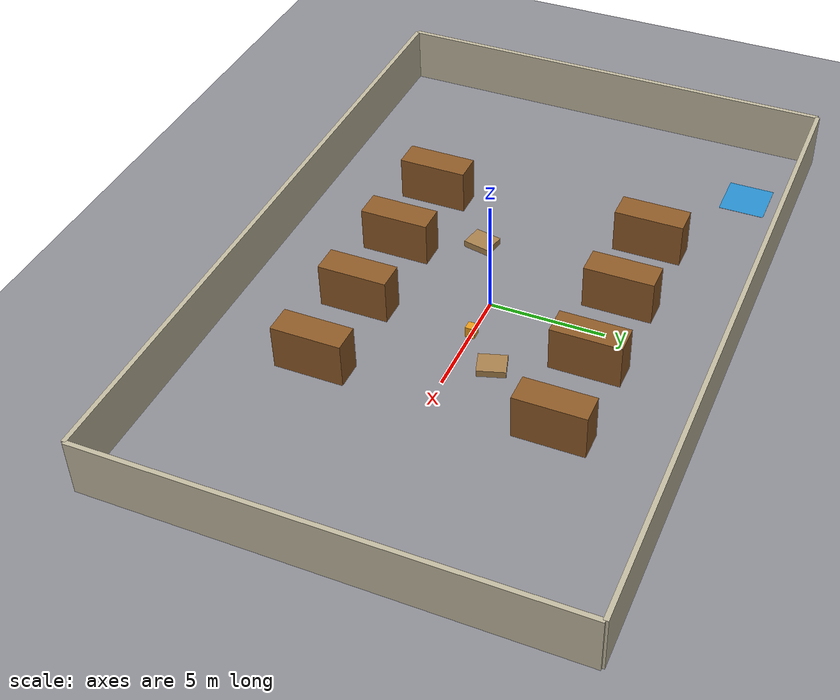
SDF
<?xml version="1.0" ?>
<sdf version="1.6">
  <world name="warehouse">

    <include>
      <uri>model://sun</uri>
    </include>

    <model name="ground_plane">
      <static>true</static>
      <link name="link">
        <collision name="collision">
          <geometry><plane><normal>0 0 1</normal><size>30 20</size></plane></geometry>
          <surface><friction><ode><mu>0.9</mu><mu2>0.9</mu2></ode></friction></surface>
        </collision>
        <visual name="visual">
          <geometry><plane><normal>0 0 1</normal><size>30 20</size></plane></geometry>
          <material>
            <ambient>0.55 0.55 0.58 1</ambient>
            <diffuse>0.55 0.55 0.58 1</diffuse>
          </material>
        </visual>
      </link>
    </model>

    <physics type="ode">
      <real_time_update_rate>1000.0</real_time_update_rate>
      <max_step_size>0.001</max_step_size>
    </physics>

    <!-- ================= Perimeter walls ================= -->
    <model name="wall_north">
      <static>true</static>
      <pose>0 10 1.25 0 0 0</pose>
      <link name="link">
        <collision name="collision"><geometry><box><size>30 0.2 2.5</size></box></geometry></collision>
        <visual name="visual">
          <geometry><box><size>30 0.2 2.5</size></box></geometry>
          <material><ambient>0.75 0.72 0.62 1</ambient><diffuse>0.75 0.72 0.62 1</diffuse></material>
        </visual>
      </link>
    </model>
    <model name="wall_south">
      <static>true</static>
      <pose>0 -10 1.25 0 0 0</pose>
      <link name="link">
        <collision name="collision"><geometry><box><size>30 0.2 2.5</size></box></geometry></collision>
        <visual name="visual">
          <geometry><box><size>30 0.2 2.5</size></box></geometry>
          <material><ambient>0.75 0.72 0.62 1</ambient><diffuse>0.75 0.72 0.62 1</diffuse></material>
        </visual>
      </link>
    </model>
    <model name="wall_east">
      <static>true</static>
      <pose>15 0 1.25 0 0 1.5708</pose>
      <link name="link">
        <collision name="collision"><geometry><box><size>20 0.2 2.5</size></box></geometry></collision>
        <visual name="visual">
          <geometry><box><size>20 0.2 2.5</size></box></geometry>
          <material><ambient>0.75 0.72 0.62 1</ambient><diffuse>0.75 0.72 0.62 1</diffuse></material>
        </visual>
      </link>
    </model>
    <model name="wall_west">
      <static>true</static>
      <pose>-15 0 1.25 0 0 1.5708</pose>
      <link name="link">
        <collision name="collision"><geometry><box><size>20 0.2 2.5</size></box></geometry></collision>
        <visual name="visual">
          <geometry><box><size>20 0.2 2.5</size></box></geometry>
          <material><ambient>0.75 0.72 0.62 1</ambient><diffuse>0.75 0.72 0.62 1</diffuse></material>
        </visual>
      </link>
    </model>

    <!-- ================= Shelf racks (static boxes, two aisles) ================= -->

    <model name="shelf_rack_1">
      <static>true</static>
      <pose>-6.0 5.0 1.0 0 0 0</pose>
      <link name="link">
        <collision name="collision"><geometry><box><size>1.2 3.0 2.0</size></box></geometry></collision>
        <visual name="visual">
          <geometry><box><size>1.2 3.0 2.0</size></box></geometry>
          <material><ambient>0.55 0.35 0.15 1</ambient><diffuse>0.55 0.35 0.15 1</diffuse></material>
        </visual>
      </link>
    </model>

    <model name="shelf_rack_2">
      <static>true</static>
      <pose>-6.0 -5.0 1.0 0 0 0</pose>
      <link name="link">
        <collision name="collision"><geometry><box><size>1.2 3.0 2.0</size></box></geometry></collision>
        <visual name="visual">
          <geometry><box><size>1.2 3.0 2.0</size></box></geometry>
          <material><ambient>0.55 0.35 0.15 1</ambient><diffuse>0.55 0.35 0.15 1</diffuse></material>
        </visual>
      </link>
    </model>

    <model name="shelf_rack_3">
      <static>true</static>
      <pose>-2.0 5.0 1.0 0 0 0</pose>
      <link name="link">
        <collision name="collision"><geometry><box><size>1.2 3.0 2.0</size></box></geometry></collision>
        <visual name="visual">
          <geometry><box><size>1.2 3.0 2.0</size></box></geometry>
          <material><ambient>0.55 0.35 0.15 1</ambient><diffuse>0.55 0.35 0.15 1</diffuse></material>
        </visual>
      </link>
    </model>

    <model name="shelf_rack_4">
      <static>true</static>
      <pose>-2.0 -5.0 1.0 0 0 0</pose>
      <link name="link">
        <collision name="collision"><geometry><box><size>1.2 3.0 2.0</size></box></geometry></collision>
        <visual name="visual">
          <geometry><box><size>1.2 3.0 2.0</size></box></geometry>
          <material><ambient>0.55 0.35 0.15 1</ambient><diffuse>0.55 0.35 0.15 1</diffuse></material>
        </visual>
      </link>
    </model>

    <model name="shelf_rack_5">
      <static>true</static>
      <pose>2.0 5.0 1.0 0 0 0</pose>
      <link name="link">
        <collision name="collision"><geometry><box><size>1.2 3.0 2.0</size></box></geometry></collision>
        <visual name="visual">
          <geometry><box><size>1.2 3.0 2.0</size></box></geometry>
          <material><ambient>0.55 0.35 0.15 1</ambient><diffuse>0.55 0.35 0.15 1</diffuse></material>
        </visual>
      </link>
    </model>

    <model name="shelf_rack_6">
      <static>true</static>
      <pose>2.0 -5.0 1.0 0 0 0</pose>
      <link name="link">
        <collision name="collision"><geometry><box><size>1.2 3.0 2.0</size></box></geometry></collision>
        <visual name="visual">
          <geometry><box><size>1.2 3.0 2.0</size></box></geometry>
          <material><ambient>0.55 0.35 0.15 1</ambient><diffuse>0.55 0.35 0.15 1</diffuse></material>
        </visual>
      </link>
    </model>

    <model name="shelf_rack_7">
      <static>true</static>
      <pose>6.0 5.0 1.0 0 0 0</pose>
      <link name="link">
        <collision name="collision"><geometry><box><size>1.2 3.0 2.0</size></box></geometry></collision>
        <visual name="visual">
          <geometry><box><size>1.2 3.0 2.0</size></box></geometry>
          <material><ambient>0.55 0.35 0.15 1</ambient><diffuse>0.55 0.35 0.15 1</diffuse></material>
        </visual>
      </link>
    </model>

    <model name="shelf_rack_8">
      <static>true</static>
      <pose>6.0 -5.0 1.0 0 0 0</pose>
      <link name="link">
        <collision name="collision"><geometry><box><size>1.2 3.0 2.0</size></box></geometry></collision>
        <visual name="visual">
          <geometry><box><size>1.2 3.0 2.0</size></box></geometry>
          <material><ambient>0.55 0.35 0.15 1</ambient><diffuse>0.55 0.35 0.15 1</diffuse></material>
        </visual>
      </link>
    </model>

    <!-- ================= Pallets / boxes scattered near the aisles ================= -->
    <model name="pallet_1">
      <static>true</static>
      <pose>3.5 1.5 0.15 0 0 0.3</pose>
      <link name="link">
        <collision name="collision"><geometry><box><size>1.0 1.2 0.3</size></box></geometry></collision>
        <visual name="visual">
          <geometry><box><size>1.0 1.2 0.3</size></box></geometry>
          <material><ambient>0.65 0.5 0.3 1</ambient><diffuse>0.65 0.5 0.3 1</diffuse></material>
        </visual>
      </link>
    </model>
    <model name="pallet_2">
      <static>true</static>
      <pose>-3.5 -1.8 0.15 0 0 -0.2</pose>
      <link name="link">
        <collision name="collision"><geometry><box><size>1.0 1.2 0.3</size></box></geometry></collision>
        <visual name="visual">
          <geometry><box><size>1.0 1.2 0.3</size></box></geometry>
          <material><ambient>0.65 0.5 0.3 1</ambient><diffuse>0.65 0.5 0.3 1</diffuse></material>
        </visual>
      </link>
    </model>
    <model name="obstacle_box_movable_demo">
      <static>true</static>
      <pose>2.0 0 0.25 0 0 0</pose>
      <link name="link">
        <collision name="collision"><geometry><box><size>0.4 0.4 0.5</size></box></geometry></collision>
        <visual name="visual">
          <geometry><box><size>0.4 0.4 0.5</size></box></geometry>
          <material><ambient>0.9 0.6 0.1 1</ambient><diffuse>0.9 0.6 0.1 1</diffuse></material>
        </visual>
      </link>
    </model>

    <!-- ================= Loading / charging zone marking ================= -->
    <model name="charging_station_marker">
      <static>true</static>
      <pose>-11 8 0.01 0 0 0</pose>
      <link name="link">
        <visual name="visual">
          <geometry><box><size>2.0 2.0 0.02</size></box></geometry>
          <material><ambient>0.1 0.6 0.9 0.8</ambient><diffuse>0.1 0.6 0.9 0.8</diffuse></material>
        </visual>
      </link>
    </model>

  </world>
</sdf>
